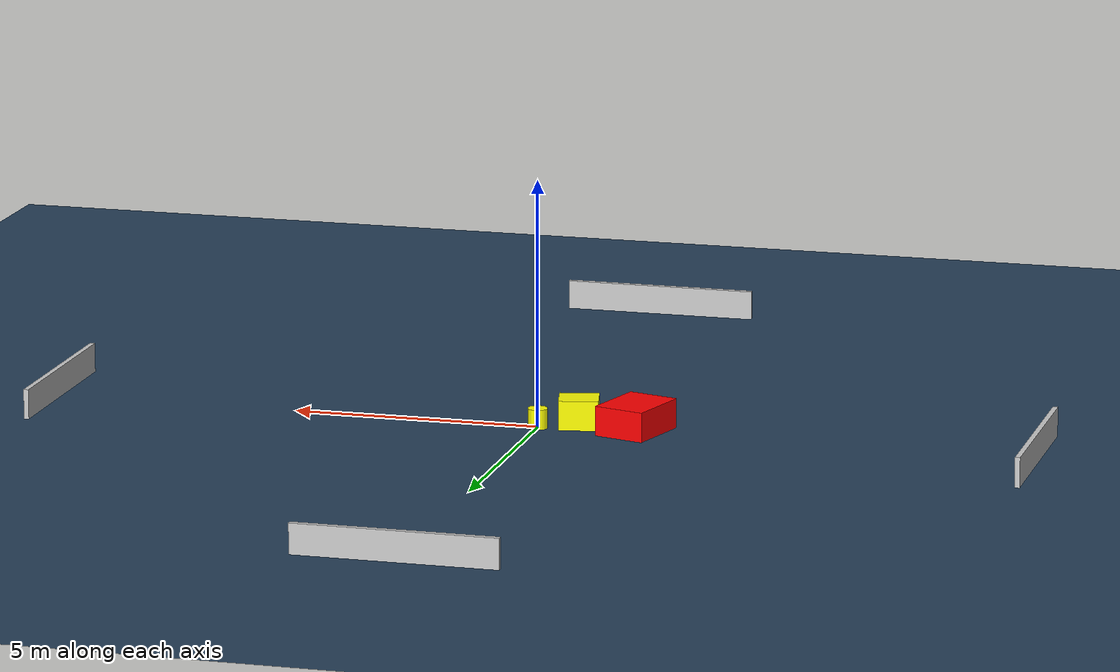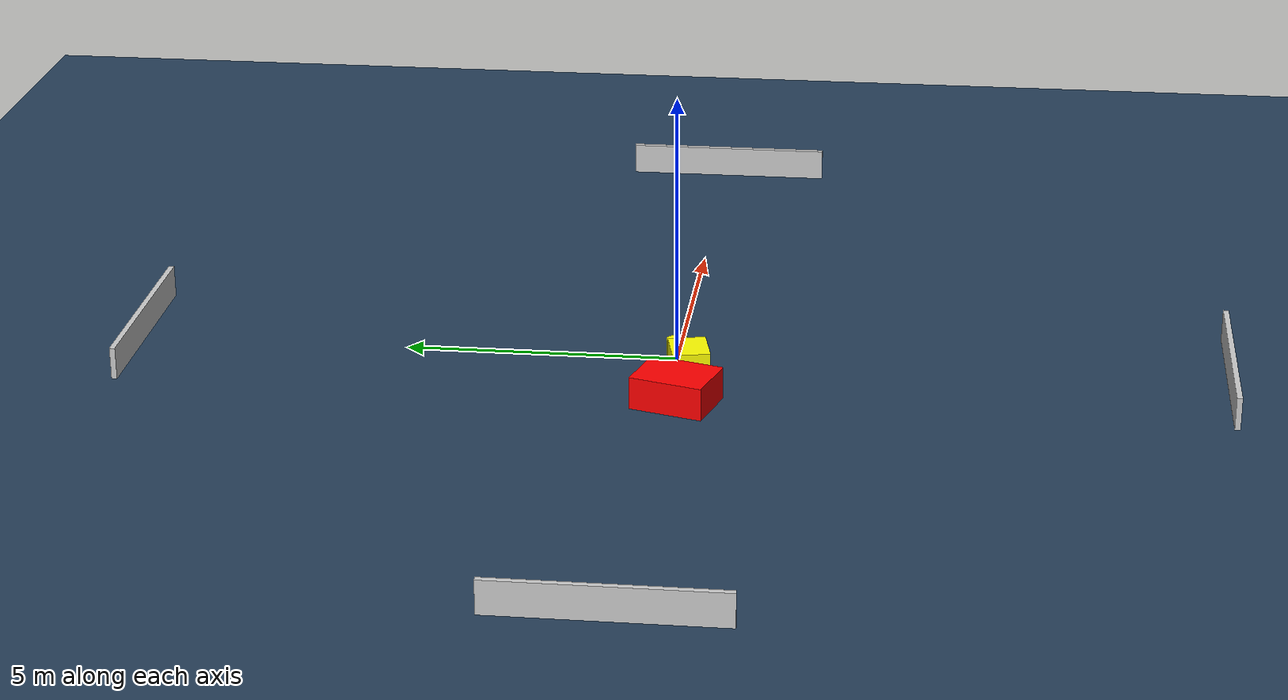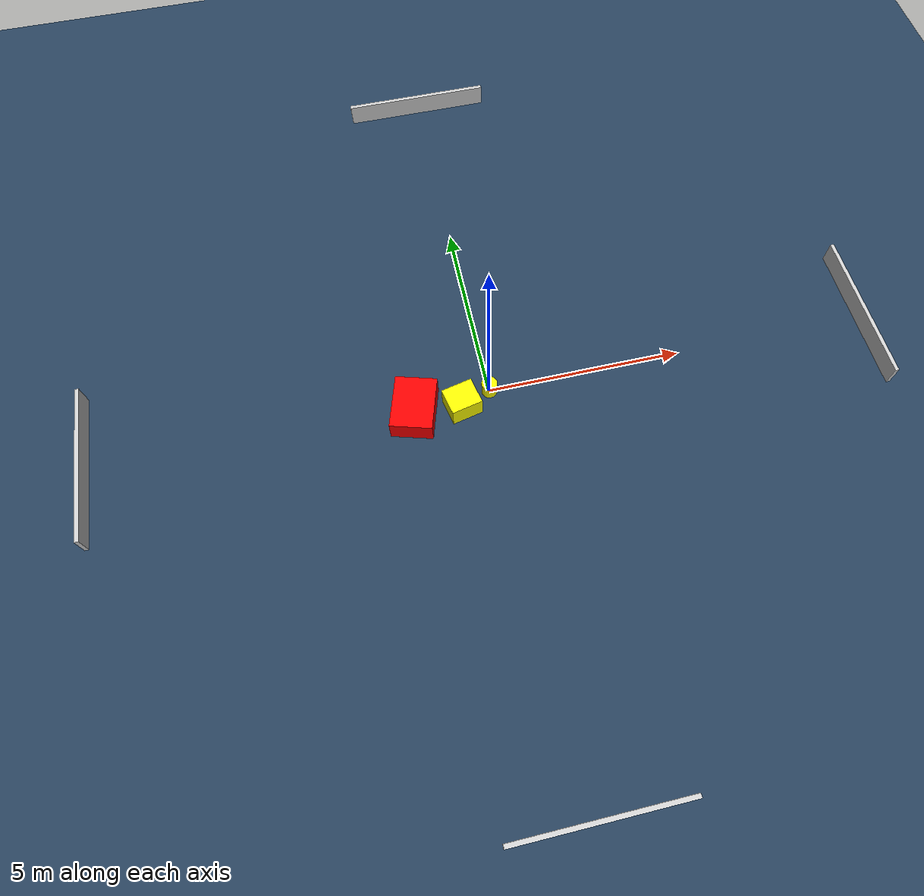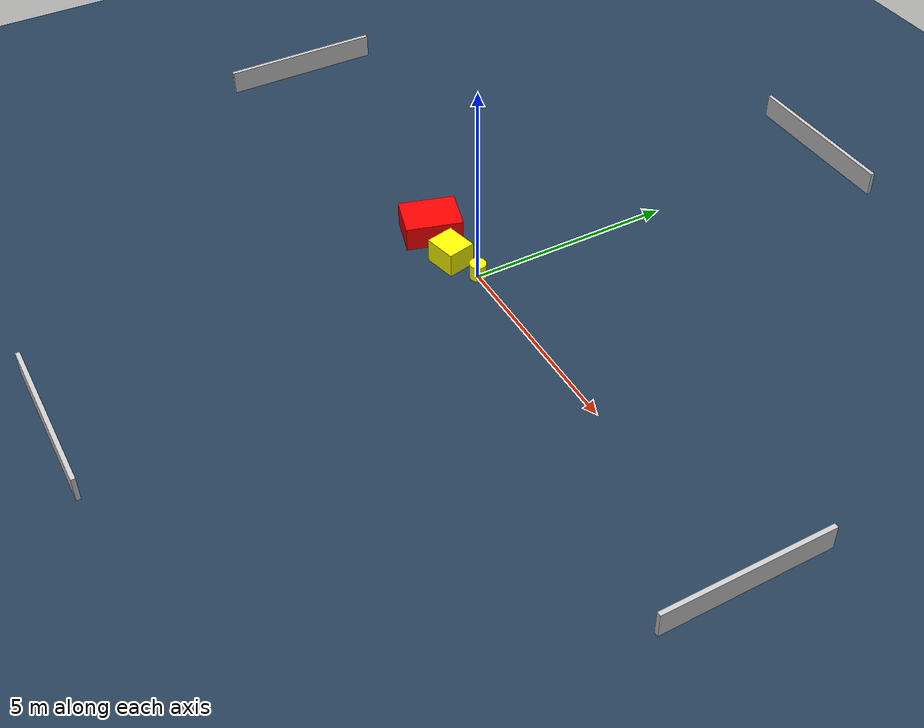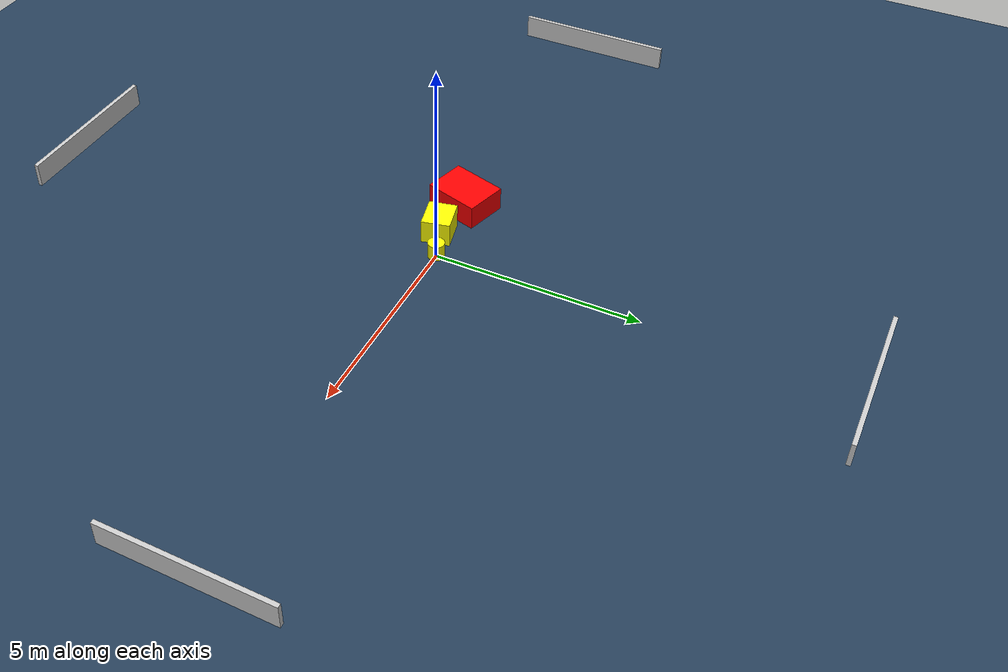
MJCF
<?xml version="1.0" ?>
<mujoco model="generated_environment">
  <option timestep="0.01" integrator="RK4" cone="elliptic"/>
  <default>
    <geom density="1"/>
  </default>
  <asset>
    <texture builtin="gradient" height="3072" name="skybox" rgb1="0.3 0.5 0.7" rgb2="0 0 0" type="skybox" width="512"/>
    <texture builtin="checker" height="300" name="groundplane" rgb1="0.2 0.3 0.4" rgb2="0.1 0.2 0.3" type="2d" width="300"/>
    <material name="groundplane" reflectance="0.2" texrepeat="5 5" texture="groundplane"/>
  </asset>
  <worldbody>
    <light dir="0 0 -1" directional="true" pos="0 0 1.5"/>
    <geom condim="3" friction="0.5 0.005 0.001" material="groundplane" name="floor" pos="0 0 0" size="0 0 0.05" type="plane"/>
    <body name="walls">
      <geom name="wall_1" condim="4" pos="-10.0 0.0 0.3" rgba="0.800000011920929 0.800000011920929 0.800000011920929 1.0" size="0.05 2.0 0.3" type="box"/>
      <geom name="wall_2" condim="4" pos="10.0 0.0 0.3" rgba="0.800000011920929 0.800000011920929 0.800000011920929 1.0" size="0.05 2.0 0.3" type="box"/>
      <geom name="wall_3" condim="4" pos="0.0 -10.0 0.3" rgba="0.800000011920929 0.800000011920929 0.800000011920929 1.0" size="2.0 0.05 0.3" type="box"/>
      <geom name="wall_4" condim="4" pos="0.0 10.0 0.3" rgba="0.800000011920929 0.800000011920929 0.800000011920929 1.0" size="2.0 0.05 0.3" type="box"/>
    </body>
    <body name="robot">
      <joint name="joint_x" type="slide" pos="0 0 0" axis="1 0 0"/>
      <joint name="joint_y" type="slide" pos="0 0 0" axis="0 1 0"/>
      <geom name="robot" type="cylinder" pos="0.0 0.0 0.2" size="0.2 0.2 0.0" mass="5.0" friction="1.0 0.005 0.0001" condim="4" rgba="1.0 1.0 0.0 1.0"/>
    </body>
    <body name="obstacle_1_movable">
      <geom name="obstacle_1_movable" condim="4" pos="-0.7637583183161556 -0.2950007325470762 0.3" euler="0 0 12.512210001547746" friction="0.0 0.005 0.001" rgba="1.0 1.0 0.0 1.0" size="0.3978399623330831 0.34511033522702494 0.3" type="box" mass="0.1"/>
      <joint type="free"/>
    </body>
    <body name="obstacle_2_static">
      <geom name="obstacle_2_static" condim="4" pos="-1.9555207255486706 -0.1947269487309396 0.3" euler="0 0 253.6492369111705" friction="0.0 0.005 0.001" rgba="1.0 0.0 0.0 1.0" size="0.6832630758556164 0.5253419108116593 0.3" type="box"/>
    </body>
  </worldbody>
  <actuator>
    <motor name="actuator_x" joint="joint_x" gear="1" ctrlrange="-1 1"/>
    <motor name="actuator_y" joint="joint_y" gear="1" ctrlrange="-1 1"/>
  </actuator>
</mujoco>
